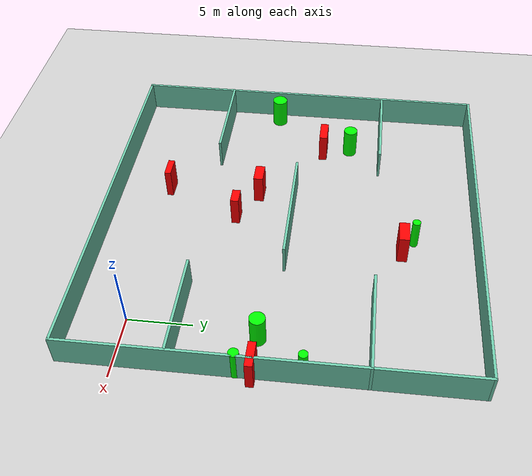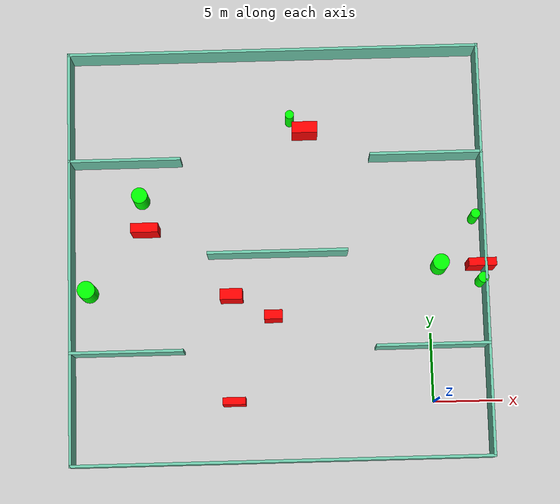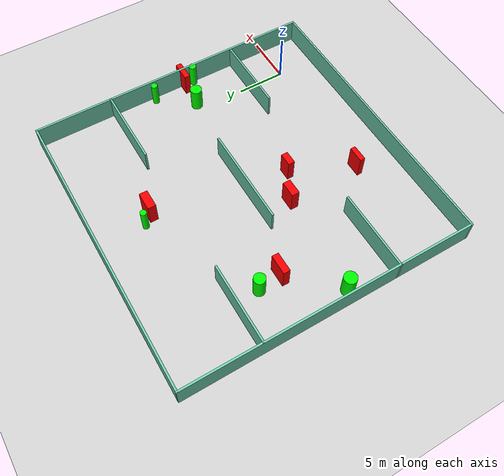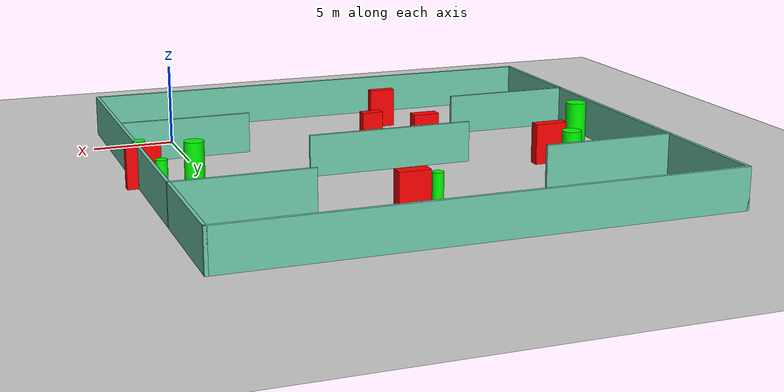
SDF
<sdf version="1.7">
 <world name="default">
  <light name="sun" type="directional">
   <pose>0 0 10 0 -0 0</pose>
   <diffuse>0.8 0.8 0.8 1</diffuse>
   <specular>0.2 0.2 0.2 1</specular>
   <attenuation>
    <range>1000</range>
    <constant>0.9</constant>
    <linear>0.01</linear>
    <quadratic>0.001</quadratic>
   </attenuation>
   <direction>-0.5 0.1 -0.9</direction>
   <spot><inner_angle>0</inner_angle><outer_angle>0</outer_angle><falloff>0</falloff></spot>
  </light>
  <model name="ground_plane">
   <static>1</static>
   <link name="link">
    <collision name="collision">
     <geometry><plane><normal>0 0 1</normal><size>100 100</size></plane></geometry>
     <surface>
      <contact><collide_bitmask>65535</collide_bitmask></contact>
      <friction><ode><mu>100</mu><mu2>50</mu2></ode></friction>
     </surface>
    </collision>
    <visual name="visual">
     <cast_shadows>0</cast_shadows>
     <geometry><plane><normal>0 0 1</normal><size>100 100</size></plane></geometry>
     <material>
      <script><uri>file://media/materials/scripts/gazebo.material</uri><name>Gazebo/Grey</name></script>
     </material>
    </visual>
   </link>
  </model>
  <gravity>0 0 -9.8</gravity>
  <magnetic_field>6e-06 2.3e-05 -4.2e-05</magnetic_field>
  <atmosphere type="adiabatic"/>
  <physics type="ode">
   <max_step_size>0.001</max_step_size>
   <real_time_factor>1</real_time_factor>
   <real_time_update_rate>1000</real_time_update_rate>
  </physics>
  <scene><ambient>0.4 0.4 0.4 1</ambient><background>0.7 0.7 0.7 1</background><shadows>1</shadows></scene>
  <spherical_coordinates>
   <surface_model>EARTH_WGS84</surface_model>
   <latitude_deg>0</latitude_deg>
   <longitude_deg>0</longitude_deg>
   <elevation>0</elevation>
   <heading_deg>0</heading_deg>
  </spherical_coordinates>
  <model name="my_base_walls">
   <link name="Wall_10">
    <collision name="Wall_10_Collision">
     <geometry><box><size>8.2 0.2 2.5</size></box></geometry>
     <pose>0 0 1.25 0 -0 0</pose>
    </collision>
    <visual name="Wall_10_Visual">
     <pose>0 0 1.25 0 -0 0</pose>
     <geometry><box><size>8.2 0.2 2.5</size></box></geometry>
     <material>
      <script><uri>file://media/materials/scripts/gazebo.material</uri><name>Gazebo/Grey</name></script>
      <ambient>0.435294 0.796078 0.67451 1</ambient>
     </material>
     <meta><layer>0</layer></meta>
    </visual>
    <pose>-11 -7 0 0 -0 0</pose>
   </link>
   <link name="Wall_12">
    <collision name="Wall_12_Collision">
     <geometry><box><size>8.2 0.2 2.5</size></box></geometry>
     <pose>0 0 1.25 0 -0 0</pose>
    </collision>
    <visual name="Wall_12_Visual">
     <pose>0 0 1.25 0 -0 0</pose>
     <geometry><box><size>8.2 0.2 2.5</size></box></geometry>
     <material>
      <script><uri>file://media/materials/scripts/gazebo.material</uri><name>Gazebo/Grey</name></script>
      <ambient>0.435294 0.796078 0.67451 1</ambient>
     </material>
     <meta><layer>0</layer></meta>
    </visual>
    <pose>-11 7 0 0 -0 0</pose>
   </link>
   <link name="Wall_14">
    <collision name="Wall_14_Collision">
     <geometry><box><size>8.2 0.2 2.5</size></box></geometry>
     <pose>0 0 1.25 0 -0 0</pose>
    </collision>
    <visual name="Wall_14_Visual">
     <pose>0 0 1.25 0 -0 0</pose>
     <geometry><box><size>8.2 0.2 2.5</size></box></geometry>
     <material>
      <script><uri>file://media/materials/scripts/gazebo.material</uri><name>Gazebo/Grey</name></script>
      <ambient>0.435294 0.796078 0.67451 1</ambient>
     </material>
     <meta><layer>0</layer></meta>
    </visual>
    <pose>11 7 0 0 -0 3.14159</pose>
   </link>
   <link name="Wall_16">
    <collision name="Wall_16_Collision">
     <geometry><box><size>10.2 0.2 2.5</size></box></geometry>
     <pose>0 0 1.25 0 -0 0</pose>
    </collision>
    <visual name="Wall_16_Visual">
     <pose>0 0 1.25 0 -0 0</pose>
     <geometry><box><size>10.2 0.2 2.5</size></box></geometry>
     <material>
      <script><uri>file://media/materials/scripts/gazebo.material</uri><name>Gazebo/Grey</name></script>
      <ambient>0.435294 0.796078 0.67451 1</ambient>
     </material>
     <meta><layer>0</layer></meta>
    </visual>
    <pose>0 0 0 0 -0 3.14159</pose>
   </link>
   <link name="Wall_2">
    <collision name="Wall_2_Collision">
     <geometry><box><size>30.2 0.2 2.5</size></box></geometry>
     <pose>0 0 1.25 0 -0 0</pose>
    </collision>
    <visual name="Wall_2_Visual">
     <pose>0 0 1.25 0 -0 0</pose>
     <geometry><box><size>30.2 0.2 2.5</size></box></geometry>
     <material>
      <script><uri>file://media/materials/scripts/gazebo.material</uri><name>Gazebo/Grey</name></script>
      <ambient>0.435294 0.796078 0.67451 1</ambient>
     </material>
     <meta><layer>0</layer></meta>
    </visual>
    <pose>0 -15 0 0 -0 3.14159</pose>
   </link>
   <link name="Wall_3">
    <collision name="Wall_3_Collision">
     <geometry><box><size>30.2 0.2 2.5</size></box></geometry>
     <pose>0 0 1.25 0 -0 0</pose>
    </collision>
    <visual name="Wall_3_Visual">
     <pose>0 0 1.25 0 -0 0</pose>
     <geometry><box><size>30.2 0.2 2.5</size></box></geometry>
     <material>
      <script><uri>file://media/materials/scripts/gazebo.material</uri><name>Gazebo/Grey</name></script>
      <ambient>0.435294 0.796078 0.67451 1</ambient>
     </material>
     <meta><layer>0</layer></meta>
    </visual>
    <pose>-15 0 0 0 -0 1.5708</pose>
   </link>
   <link name="Wall_4">
    <collision name="Wall_4_Collision">
     <geometry><box><size>30.2 0.2 2.5</size></box></geometry>
     <pose>0 0 1.25 0 -0 0</pose>
    </collision>
    <visual name="Wall_4_Visual">
     <pose>0 0 1.25 0 -0 0</pose>
     <geometry><box><size>30.2 0.2 2.5</size></box></geometry>
     <material>
      <script><uri>file://media/materials/scripts/gazebo.material</uri><name>Gazebo/Grey</name></script>
      <ambient>0.435294 0.796078 0.67451 1</ambient>
     </material>
     <meta><layer>0</layer></meta>
    </visual>
    <pose>0 15 0 0 -0 0</pose>
   </link>
   <link name="Wall_6">
    <collision name="Wall_6_Collision">
     <geometry><box><size>30.2 0.2 2.5</size></box></geometry>
     <pose>0 0 1.25 0 -0 0</pose>
    </collision>
    <visual name="Wall_6_Visual">
     <pose>0 0 1.25 0 -0 0</pose>
     <geometry><box><size>30.2 0.2 2.5</size></box></geometry>
     <material>
      <script><uri>file://media/materials/scripts/gazebo.material</uri><name>Gazebo/Grey</name></script>
      <ambient>0.435294 0.796078 0.67451 1</ambient>
     </material>
     <meta><layer>0</layer></meta>
    </visual>
    <pose>15 0 0 0 -0 1.5708</pose>
   </link>
   <link name="Wall_8">
    <collision name="Wall_8_Collision">
     <geometry><box><size>8.2 0.2 2.5</size></box></geometry>
     <pose>0 0 1.25 0 -0 0</pose>
    </collision>
    <visual name="Wall_8_Visual">
     <pose>0 0 1.25 0 -0 0</pose>
     <geometry><box><size>8.2 0.2 2.5</size></box></geometry>
     <material>
      <script><uri>file://media/materials/scripts/gazebo.material</uri><name>Gazebo/Grey</name></script>
      <ambient>0.435294 0.796078 0.67451 1</ambient>
     </material>
     <meta><layer>0</layer></meta>
    </visual>
    <pose>11 -7 0 0 -0 3.14159</pose>
   </link>
   <static>1</static>
   <pose>-11 11 0 0 -0 0</pose>
  </model>
  <model name="cylinder1">
   <static>1</static>
   <link name="link">
    <inertial>
     <mass>1</mass>
     <inertia><ixx>0.5</ixx><ixy>0</ixy><ixz>0</ixz><iyy>0.5</iyy><iyz>0</iyz><izz>1</izz></inertia>
    </inertial>
    <collision name="collision">
     <geometry><cylinder><radius>0.32214413617017457</radius><length>2.5</length></cylinder></geometry>
    </collision>
    <visual name="visual">
     <geometry><cylinder><radius>0.32214413617017457</radius><length>2.5</length></cylinder></geometry>
     <material>
      <ambient>0 1 0 1</ambient>
      <diffuse>0 1 0 1</diffuse>
      <specular>0.1 0.1 0.1 1</specular>
      <emissive>0 0 0 0</emissive>
     </material>
    </visual>
   </link>
   <pose>-9.873602318004854 21.07225148563142 1.25 0 0 0</pose>
  </model>
  <model name="cylinder2">
   <static>1</static>
   <link name="link">
    <inertial>
     <mass>1</mass>
     <inertia><ixx>0.5</ixx><ixy>0</ixy><ixz>0</ixz><iyy>0.5</iyy><iyz>0</iyz><izz>1</izz></inertia>
    </inertial>
    <collision name="collision">
     <geometry><cylinder><radius>0.592565259052455</radius><length>2.5</length></cylinder></geometry>
    </collision>
    <visual name="visual">
     <geometry><cylinder><radius>0.592565259052455</radius><length>2.5</length></cylinder></geometry>
     <material>
      <ambient>0 1 0 1</ambient>
      <diffuse>0 1 0 1</diffuse>
      <specular>0.1 0.1 0.1 1</specular>
      <emissive>0 0 0 0</emissive>
     </material>
    </visual>
   </link>
   <pose>0.7712509022044571 9.894047186552278 1.25 0 0 0</pose>
  </model>
  <model name="cylinder3">
   <static>1</static>
   <link name="link">
    <inertial>
     <mass>1</mass>
     <inertia><ixx>0.5</ixx><ixy>0</ixy><ixz>0</ixz><iyy>0.5</iyy><iyz>0</iyz><izz>1</izz></inertia>
    </inertial>
    <collision name="collision">
     <geometry><cylinder><radius>0.5804572600755916</radius><length>2.5</length></cylinder></geometry>
    </collision>
    <visual name="visual">
     <geometry><cylinder><radius>0.5804572600755916</radius><length>2.5</length></cylinder></geometry>
     <material>
      <ambient>0 1 0 1</ambient>
      <diffuse>0 1 0 1</diffuse>
      <specular>0.1 0.1 0.1 1</specular>
      <emissive>0 0 0 0</emissive>
     </material>
    </visual>
   </link>
   <pose>-20.91933381165871 15.334136834788211 1.25 0 0 0</pose>
  </model>
  <model name="cylinder4">
   <static>1</static>
   <link name="link">
    <inertial>
     <mass>1</mass>
     <inertia><ixx>0.5</ixx><ixy>0</ixy><ixz>0</ixz><iyy>0.5</iyy><iyz>0</iyz><izz>1</izz></inertia>
    </inertial>
    <collision name="collision">
     <geometry><cylinder><radius>0.6461021802107457</radius><length>2.5</length></cylinder></geometry>
    </collision>
    <visual name="visual">
     <geometry><cylinder><radius>0.6461021802107457</radius><length>2.5</length></cylinder></geometry>
     <material>
      <ambient>0 1 0 1</ambient>
      <diffuse>0 1 0 1</diffuse>
      <specular>0.1 0.1 0.1 1</specular>
      <emissive>0 0 0 0</emissive>
     </material>
    </visual>
   </link>
   <pose>-24.823082106584103 8.520016796263228 1.25 0 0 0</pose>
  </model>
  <model name="cylinder5">
   <static>1</static>
   <link name="link">
    <inertial>
     <mass>1</mass>
     <inertia><ixx>0.5</ixx><ixy>0</ixy><ixz>0</ixz><iyy>0.5</iyy><iyz>0</iyz><izz>1</izz></inertia>
    </inertial>
    <collision name="collision">
     <geometry><cylinder><radius>0.3386568973747112</radius><length>2.5</length></cylinder></geometry>
    </collision>
    <visual name="visual">
     <geometry><cylinder><radius>0.3386568973747112</radius><length>2.5</length></cylinder></geometry>
     <material>
      <ambient>0 1 0 1</ambient>
      <diffuse>0 1 0 1</diffuse>
      <specular>0.1 0.1 0.1 1</specular>
      <emissive>0 0 0 0</emissive>
     </material>
    </visual>
   </link>
   <pose>3.392254497005247 13.37608098430309 1.25 0 0 0</pose>
  </model>
  <model name="cylinder6">
   <static>1</static>
   <link name="link">
    <inertial>
     <mass>1</mass>
     <inertia><ixx>0.5</ixx><ixy>0</ixy><ixz>0</ixz><iyy>0.5</iyy><iyz>0</iyz><izz>1</izz></inertia>
    </inertial>
    <collision name="collision">
     <geometry><cylinder><radius>0.3840344778789355</radius><length>2.5</length></cylinder></geometry>
    </collision>
    <visual name="visual">
     <geometry><cylinder><radius>0.3840344778789355</radius><length>2.5</length></cylinder></geometry>
     <material>
      <ambient>0 1 0 1</ambient>
      <diffuse>0 1 0 1</diffuse>
      <specular>0.1 0.1 0.1 1</specular>
      <emissive>0 0 0 0</emissive>
     </material>
    </visual>
   </link>
   <pose>3.772641504438397 8.703863715792197 1.25 0 0 0</pose>
  </model>
  <model name="box1">
   <static>1</static>
   <link name="link">
    <inertial>
     <mass>1</mass>
     <inertia><ixx>0.083</ixx><ixy>0</ixy><ixz>0</ixz><iyy>0.083</iyy><iyz>0</iyz><izz>0.083</izz></inertia>
    </inertial>
    <collision name="collision">
     <geometry><box><size>1.9879969631678547 0.6779333217045901 2.5</size></box></geometry>
    </collision>
    <visual name="visual">
     <geometry><box><size>1.9879969631678547 0.6779333217045901 2.5</size></box></geometry>
     <material>
      <ambient>1 0 0 1</ambient>
      <diffuse>1 0 0 1</diffuse>
      <specular>0.1 0.1 0.1 1</specular>
      <emissive>0 0 0 0</emissive>
     </material>
    </visual>
    <sensor name="my_contact" type="contact">
     <contact><collision>box_collision</collision><topic>__default_topic__</topic></contact>
    </sensor>
   </link>
   <pose>-20.60726030808269 12.968089051787189 1.25 0 0 0</pose>
  </model>
  <model name="box2">
   <static>1</static>
   <link name="link">
    <inertial>
     <mass>1</mass>
     <inertia><ixx>0.083</ixx><ixy>0</ixy><ixz>0</ixz><iyy>0.083</iyy><iyz>0</iyz><izz>0.083</izz></inertia>
    </inertial>
    <collision name="collision">
     <geometry><box><size>1.6301077804827395 0.7824338271654034 2.5</size></box></geometry>
    </collision>
    <visual name="visual">
     <geometry><box><size>1.6301077804827395 0.7824338271654034 2.5</size></box></geometry>
     <material>
      <ambient>1 0 0 1</ambient>
      <diffuse>1 0 0 1</diffuse>
      <specular>0.1 0.1 0.1 1</specular>
      <emissive>0 0 0 0</emissive>
     </material>
    </visual>
    <sensor name="my_contact" type="contact">
     <contact><collision>box_collision</collision><topic>__default_topic__</topic></contact>
    </sensor>
   </link>
   <pose>-14.417370219162809 7.971243344706956 1.25 0 0 0</pose>
  </model>
  <model name="box3">
   <static>1</static>
   <link name="link">
    <inertial>
     <mass>1</mass>
     <inertia><ixx>0.083</ixx><ixy>0</ixy><ixz>0</ixz><iyy>0.083</iyy><iyz>0</iyz><izz>0.083</izz></inertia>
    </inertial>
    <collision name="collision">
     <geometry><box><size>1.8553023418865882 0.8211841773145094 2.5</size></box></geometry>
    </collision>
    <visual name="visual">
     <geometry><box><size>1.8553023418865882 0.8211841773145094 2.5</size></box></geometry>
     <material>
      <ambient>1 0 0 1</ambient>
      <diffuse>1 0 0 1</diffuse>
      <specular>0.1 0.1 0.1 1</specular>
      <emissive>0 0 0 0</emissive>
     </material>
    </visual>
    <sensor name="my_contact" type="contact">
     <contact><collision>box_collision</collision><topic>__default_topic__</topic></contact>
    </sensor>
   </link>
   <pose>-8.802453603931852 20.121282173529046 1.25 0 0 0</pose>
  </model>
  <model name="box4">
   <static>1</static>
   <link name="link">
    <inertial>
     <mass>1</mass>
     <inertia><ixx>0.083</ixx><ixy>0</ixy><ixz>0</ixz><iyy>0.083</iyy><iyz>0</iyz><izz>0.083</izz></inertia>
    </inertial>
    <collision name="collision">
     <geometry><box><size>1.308904918582174 0.6661934442798034 2.5</size></box></geometry>
    </collision>
    <visual name="visual">
     <geometry><box><size>1.308904918582174 0.6661934442798034 2.5</size></box></geometry>
     <material>
      <ambient>1 0 0 1</ambient>
      <diffuse>1 0 0 1</diffuse>
      <specular>0.1 0.1 0.1 1</specular>
      <emissive>0 0 0 0</emissive>
     </material>
    </visual>
    <sensor name="my_contact" type="contact">
     <contact><collision>box_collision</collision><topic>__default_topic__</topic></contact>
    </sensor>
   </link>
   <pose>-11.415023984834416 6.415173457795511 1.25 0 0 0</pose>
  </model>
  <model name="box5">
   <static>1</static>
   <link name="link">
    <inertial>
     <mass>1</mass>
     <inertia><ixx>0.083</ixx><ixy>0</ixy><ixz>0</ixz><iyy>0.083</iyy><iyz>0</iyz><izz>0.083</izz></inertia>
    </inertial>
    <collision name="collision">
     <geometry><box><size>1.6427635451844746 0.5234008309048143 2.5</size></box></geometry>
    </collision>
    <visual name="visual">
     <geometry><box><size>1.6427635451844746 0.5234008309048143 2.5</size></box></geometry>
     <material>
      <ambient>1 0 0 1</ambient>
      <diffuse>1 0 0 1</diffuse>
      <specular>0.1 0.1 0.1 1</specular>
      <emissive>0 0 0 0</emissive>
     </material>
    </visual>
    <sensor name="my_contact" type="contact">
     <contact><collision>box_collision</collision><topic>__default_topic__</topic></contact>
    </sensor>
   </link>
   <pose>-14.350467678836255 0.30357567657262896 1.25 0 0 0</pose>
  </model>
  <model name="box6">
   <static>1</static>
   <link name="link">
    <inertial>
     <mass>1</mass>
     <inertia><ixx>0.083</ixx><ixy>0</ixy><ixz>0</ixz><iyy>0.083</iyy><iyz>0</iyz><izz>0.083</izz></inertia>
    </inertial>
    <collision name="collision">
     <geometry><box><size>2.0144815867401995 0.5827693950219597 2.5</size></box></geometry>
    </collision>
    <visual name="visual">
     <geometry><box><size>2.0144815867401995 0.5827693950219597 2.5</size></box></geometry>
     <material>
      <ambient>1 0 0 1</ambient>
      <diffuse>1 0 0 1</diffuse>
      <specular>0.1 0.1 0.1 1</specular>
      <emissive>0 0 0 0</emissive>
     </material>
    </visual>
    <sensor name="my_contact" type="contact">
     <contact><collision>box_collision</collision><topic>__default_topic__</topic></contact>
    </sensor>
   </link>
   <pose>3.753678856001283 9.846615584024532 1.25 0 0 0</pose>
  </model>
 </world>
</sdf>
